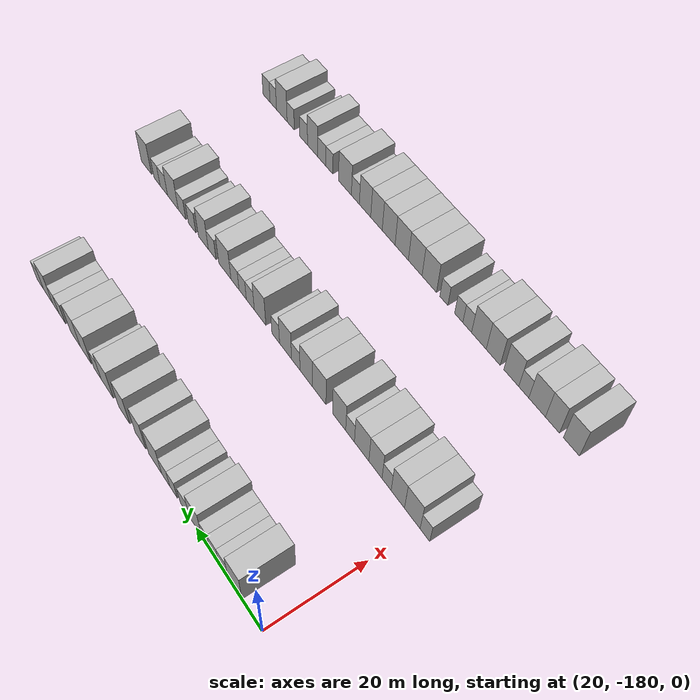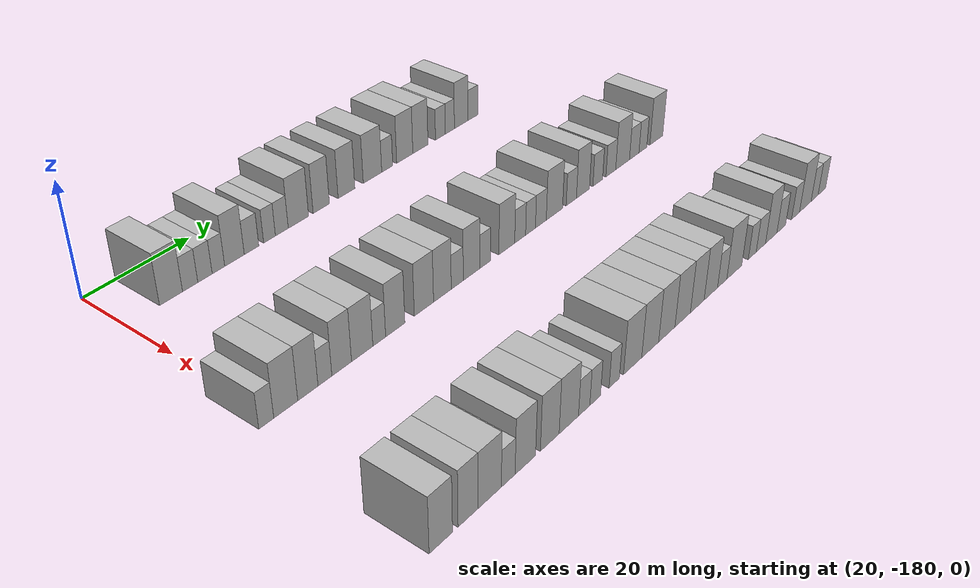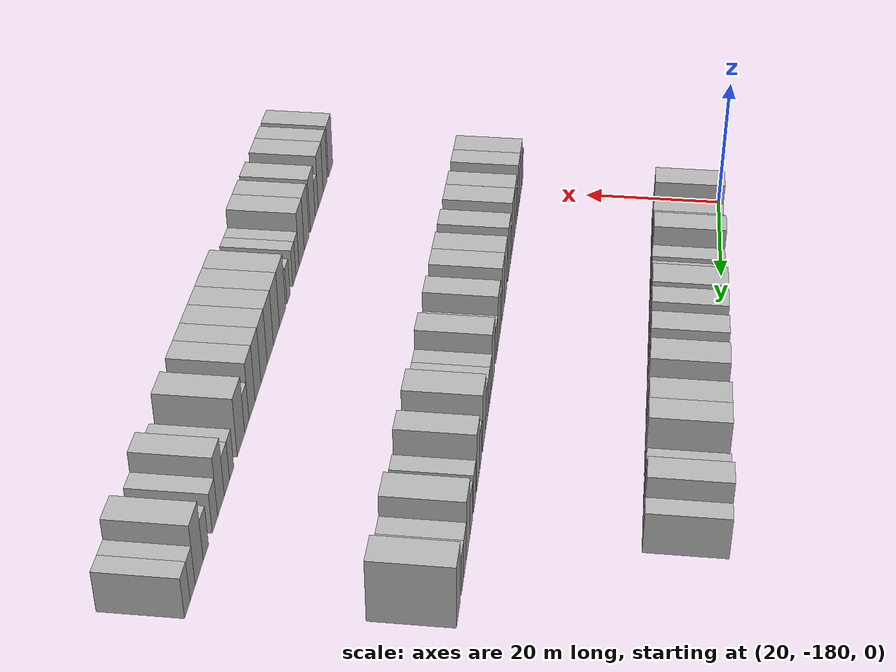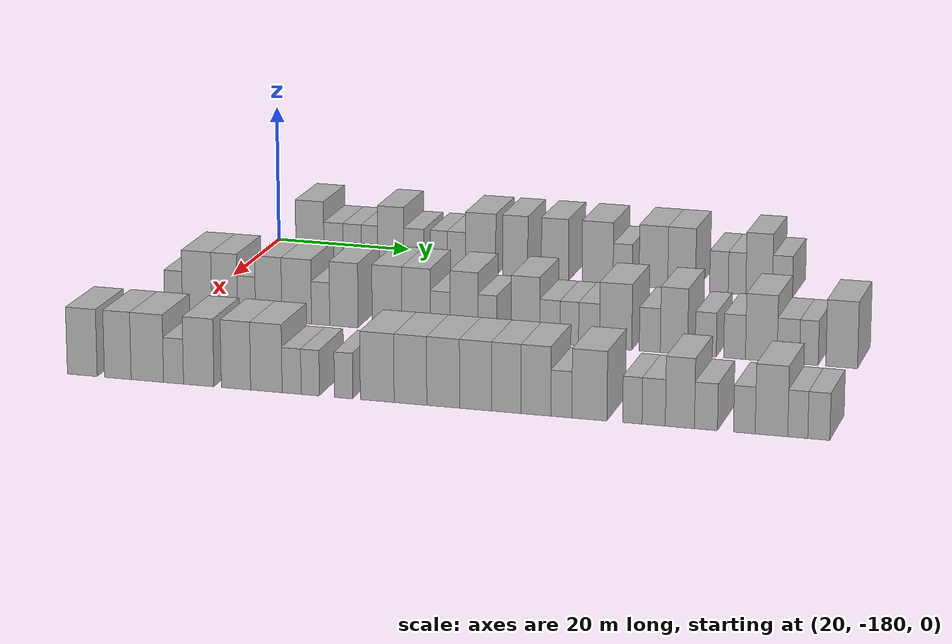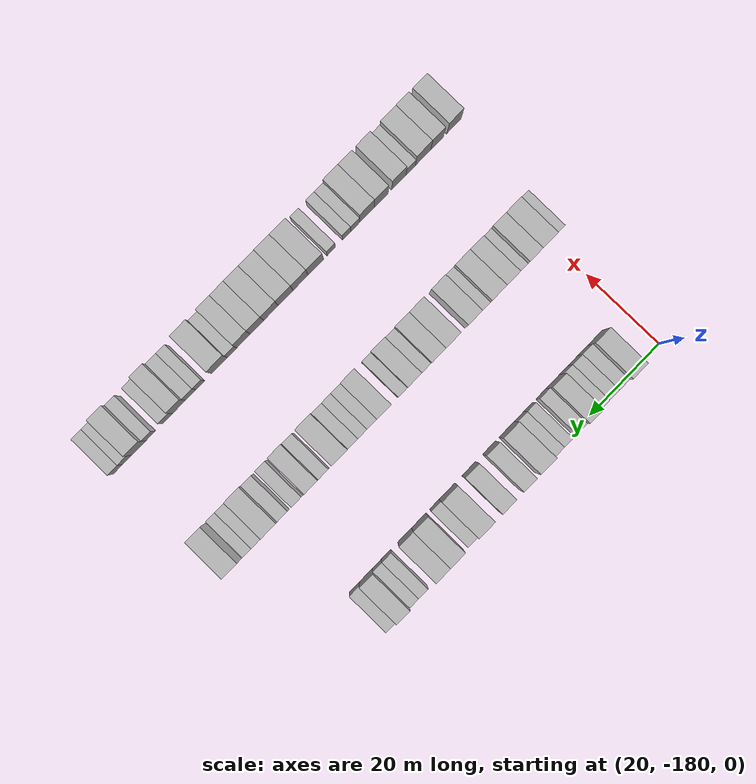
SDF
<sdf version="1.6">
 <world name="default">
  <model name="building_23">
   <static>1</static>
   <pose>25.0000 -171.9300 0 0.000000 0.000000 0.000000</pose>
   <link name="link">
    <pose>0 0 4.50 0 0 0</pose>
    <collision name="collision"><geometry><box><size>10.0000 4.2442 9.0000</size></box></geometry></collision>
    <visual name="visual">
     <cast_shadows>0</cast_shadows>
     <geometry><box><size>10.0000 4.2442 9.0000</size></box></geometry>
     <material>
      <script>
       <uri>model://HANNAS_wall/materials/scripts</uri>
       <uri>model://HANNAS_wall/materials/textures</uri>
       <name>vrc/HANNAS_wall</name>
      </script>
     </material>
    </visual>
   </link>
  </model>
  <model name="building_24">
   <static>1</static>
   <pose>25.0000 -168.3717 0 0.000000 0.000000 0.000000</pose>
   <link name="link">
    <pose>0 0 3.00 0 0 0</pose>
    <collision name="collision"><geometry><box><size>10.0000 2.8724 6.0000</size></box></geometry></collision>
    <visual name="visual">
     <cast_shadows>0</cast_shadows>
     <geometry><box><size>10.0000 2.8724 6.0000</size></box></geometry>
     <material>
      <script>
       <uri>model://HANNAS_wall/materials/scripts</uri>
       <uri>model://HANNAS_wall/materials/textures</uri>
       <name>vrc/HANNAS_wall</name>
      </script>
     </material>
    </visual>
   </link>
  </model>
  <model name="building_25">
   <static>1</static>
   <pose>25.0000 -165.5515 0 0.000000 0.000000 0.000000</pose>
   <link name="link">
    <pose>0 0 3.00 0 0 0</pose>
    <collision name="collision"><geometry><box><size>10.0000 2.7679 6.0000</size></box></geometry></collision>
    <visual name="visual">
     <cast_shadows>0</cast_shadows>
     <geometry><box><size>10.0000 2.7679 6.0000</size></box></geometry>
     <material>
      <script>
       <uri>model://HANNAS_wall/materials/scripts</uri>
       <uri>model://HANNAS_wall/materials/textures</uri>
       <name>vrc/HANNAS_wall</name>
      </script>
     </material>
    </visual>
   </link>
  </model>
  <model name="building_26">
   <static>1</static>
   <pose>25.0000 -162.9412 0 0.000000 0.000000 0.000000</pose>
   <link name="link">
    <pose>0 0 3.00 0 0 0</pose>
    <collision name="collision"><geometry><box><size>10.0000 2.4527 6.0000</size></box></geometry></collision>
    <visual name="visual">
     <cast_shadows>0</cast_shadows>
     <geometry><box><size>10.0000 2.4527 6.0000</size></box></geometry>
     <material>
      <script>
       <uri>model://HANNAS_wall/materials/scripts</uri>
       <uri>model://HANNAS_wall/materials/textures</uri>
       <name>vrc/HANNAS_wall</name>
      </script>
     </material>
    </visual>
   </link>
  </model>
  <model name="building_27">
   <static>1</static>
   <pose>25.0000 -159.7612 0 0.000000 0.000000 0.000000</pose>
   <link name="link">
    <pose>0 0 4.50 0 0 0</pose>
    <collision name="collision"><geometry><box><size>10.0000 3.9074 9.0000</size></box></geometry></collision>
    <visual name="visual">
     <cast_shadows>0</cast_shadows>
     <geometry><box><size>10.0000 3.9074 9.0000</size></box></geometry>
     <material>
      <script>
       <uri>model://HANNAS_wall/materials/scripts</uri>
       <uri>model://HANNAS_wall/materials/textures</uri>
       <name>vrc/HANNAS_wall</name>
      </script>
     </material>
    </visual>
   </link>
  </model>
  <model name="building_28">
   <static>1</static>
   <pose>25.0000 -156.3149 0 0.000000 0.000000 0.000000</pose>
   <link name="link">
    <pose>0 0 3.00 0 0 0</pose>
    <collision name="collision"><geometry><box><size>10.0000 2.9851 6.0000</size></box></geometry></collision>
    <visual name="visual">
     <cast_shadows>0</cast_shadows>
     <geometry><box><size>10.0000 2.9851 6.0000</size></box></geometry>
     <material>
      <script>
       <uri>model://HANNAS_wall/materials/scripts</uri>
       <uri>model://HANNAS_wall/materials/textures</uri>
       <name>vrc/HANNAS_wall</name>
      </script>
     </material>
    </visual>
   </link>
  </model>
  <model name="building_29">
   <static>1</static>
   <pose>25.0000 -152.5858 0 0.000000 0.000000 0.000000</pose>
   <link name="link">
    <pose>0 0 3.00 0 0 0</pose>
    <collision name="collision"><geometry><box><size>10.0000 2.4733 6.0000</size></box></geometry></collision>
    <visual name="visual">
     <cast_shadows>0</cast_shadows>
     <geometry><box><size>10.0000 2.4733 6.0000</size></box></geometry>
     <material>
      <script>
       <uri>model://HANNAS_wall/materials/scripts</uri>
       <uri>model://HANNAS_wall/materials/textures</uri>
       <name>vrc/HANNAS_wall</name>
      </script>
     </material>
    </visual>
   </link>
  </model>
  <model name="building_30">
   <static>1</static>
   <pose>25.0000 -149.9819 0 0.000000 0.000000 0.000000</pose>
   <link name="link">
    <pose>0 0 3.00 0 0 0</pose>
    <collision name="collision"><geometry><box><size>10.0000 2.7344 6.0000</size></box></geometry></collision>
    <visual name="visual">
     <cast_shadows>0</cast_shadows>
     <geometry><box><size>10.0000 2.7344 6.0000</size></box></geometry>
     <material>
      <script>
       <uri>model://HANNAS_wall/materials/scripts</uri>
       <uri>model://HANNAS_wall/materials/textures</uri>
       <name>vrc/HANNAS_wall</name>
      </script>
     </material>
    </visual>
   </link>
  </model>
  <model name="building_31">
   <static>1</static>
   <pose>25.0000 -146.3882 0 0.000000 0.000000 0.000000</pose>
   <link name="link">
    <pose>0 0 4.50 0 0 0</pose>
    <collision name="collision"><geometry><box><size>10.0000 4.4530 9.0000</size></box></geometry></collision>
    <visual name="visual">
     <cast_shadows>0</cast_shadows>
     <geometry><box><size>10.0000 4.4530 9.0000</size></box></geometry>
     <material>
      <script>
       <uri>model://HANNAS_wall/materials/scripts</uri>
       <uri>model://HANNAS_wall/materials/textures</uri>
       <name>vrc/HANNAS_wall</name>
      </script>
     </material>
    </visual>
   </link>
  </model>
  <model name="building_32">
   <static>1</static>
   <pose>25.0000 -141.3187 0 0.000000 0.000000 0.000000</pose>
   <link name="link">
    <pose>0 0 4.50 0 0 0</pose>
    <collision name="collision"><geometry><box><size>10.0000 3.6860 9.0000</size></box></geometry></collision>
    <visual name="visual">
     <cast_shadows>0</cast_shadows>
     <geometry><box><size>10.0000 3.6860 9.0000</size></box></geometry>
     <material>
      <script>
       <uri>model://HANNAS_wall/materials/scripts</uri>
       <uri>model://HANNAS_wall/materials/textures</uri>
       <name>vrc/HANNAS_wall</name>
      </script>
     </material>
    </visual>
   </link>
  </model>
  <model name="building_33">
   <static>1</static>
   <pose>25.0000 -135.5081 0 0.000000 0.000000 0.000000</pose>
   <link name="link">
    <pose>0 0 4.50 0 0 0</pose>
    <collision name="collision"><geometry><box><size>10.0000 3.9353 9.0000</size></box></geometry></collision>
    <visual name="visual">
     <cast_shadows>0</cast_shadows>
     <geometry><box><size>10.0000 3.9353 9.0000</size></box></geometry>
     <material>
      <script>
       <uri>model://HANNAS_wall/materials/scripts</uri>
       <uri>model://HANNAS_wall/materials/textures</uri>
       <name>vrc/HANNAS_wall</name>
      </script>
     </material>
    </visual>
   </link>
  </model>
  <model name="building_34">
   <static>1</static>
   <pose>25.0000 -129.2922 0 0.000000 0.000000 0.000000</pose>
   <link name="link">
    <pose>0 0 4.50 0 0 0</pose>
    <collision name="collision"><geometry><box><size>10.0000 4.4963 9.0000</size></box></geometry></collision>
    <visual name="visual">
     <cast_shadows>0</cast_shadows>
     <geometry><box><size>10.0000 4.4963 9.0000</size></box></geometry>
     <material>
      <script>
       <uri>model://HANNAS_wall/materials/scripts</uri>
       <uri>model://HANNAS_wall/materials/textures</uri>
       <name>vrc/HANNAS_wall</name>
      </script>
     </material>
    </visual>
   </link>
  </model>
  <model name="building_35">
   <static>1</static>
   <pose>25.0000 -125.6714 0 0.000000 0.000000 0.000000</pose>
   <link name="link">
    <pose>0 0 3.00 0 0 0</pose>
    <collision name="collision"><geometry><box><size>10.0000 2.7454 6.0000</size></box></geometry></collision>
    <visual name="visual">
     <cast_shadows>0</cast_shadows>
     <geometry><box><size>10.0000 2.7454 6.0000</size></box></geometry>
     <material>
      <script>
       <uri>model://HANNAS_wall/materials/scripts</uri>
       <uri>model://HANNAS_wall/materials/textures</uri>
       <name>vrc/HANNAS_wall</name>
      </script>
     </material>
    </visual>
   </link>
  </model>
  <model name="building_36">
   <static>1</static>
   <pose>25.0000 -121.2329 0 0.000000 0.000000 0.000000</pose>
   <link name="link">
    <pose>0 0 4.50 0 0 0</pose>
    <collision name="collision"><geometry><box><size>10.0000 4.1315 9.0000</size></box></geometry></collision>
    <visual name="visual">
     <cast_shadows>0</cast_shadows>
     <geometry><box><size>10.0000 4.1315 9.0000</size></box></geometry>
     <material>
      <script>
       <uri>model://HANNAS_wall/materials/scripts</uri>
       <uri>model://HANNAS_wall/materials/textures</uri>
       <name>vrc/HANNAS_wall</name>
      </script>
     </material>
    </visual>
   </link>
  </model>
  <model name="building_37">
   <static>1</static>
   <pose>25.0000 -117.1800 0 0.000000 0.000000 0.000000</pose>
   <link name="link">
    <pose>0 0 4.50 0 0 0</pose>
    <collision name="collision"><geometry><box><size>10.0000 3.9742 9.0000</size></box></geometry></collision>
    <visual name="visual">
     <cast_shadows>0</cast_shadows>
     <geometry><box><size>10.0000 3.9742 9.0000</size></box></geometry>
     <material>
      <script>
       <uri>model://HANNAS_wall/materials/scripts</uri>
       <uri>model://HANNAS_wall/materials/textures</uri>
       <name>vrc/HANNAS_wall</name>
      </script>
     </material>
    </visual>
   </link>
  </model>
  <model name="building_38">
   <static>1</static>
   <pose>25.0000 -111.8681 0 0.000000 0.000000 0.000000</pose>
   <link name="link">
    <pose>0 0 3.00 0 0 0</pose>
    <collision name="collision"><geometry><box><size>10.0000 2.6496 6.0000</size></box></geometry></collision>
    <visual name="visual">
     <cast_shadows>0</cast_shadows>
     <geometry><box><size>10.0000 2.6496 6.0000</size></box></geometry>
     <material>
      <script>
       <uri>model://HANNAS_wall/materials/scripts</uri>
       <uri>model://HANNAS_wall/materials/textures</uri>
       <name>vrc/HANNAS_wall</name>
      </script>
     </material>
    </visual>
   </link>
  </model>
  <model name="building_39">
   <static>1</static>
   <pose>25.0000 -109.2914 0 0.000000 0.000000 0.000000</pose>
   <link name="link">
    <pose>0 0 3.00 0 0 0</pose>
    <collision name="collision"><geometry><box><size>10.0000 2.5039 6.0000</size></box></geometry></collision>
    <visual name="visual">
     <cast_shadows>0</cast_shadows>
     <geometry><box><size>10.0000 2.5039 6.0000</size></box></geometry>
     <material>
      <script>
       <uri>model://HANNAS_wall/materials/scripts</uri>
       <uri>model://HANNAS_wall/materials/textures</uri>
       <name>vrc/HANNAS_wall</name>
      </script>
     </material>
    </visual>
   </link>
  </model>
  <model name="building_40">
   <static>1</static>
   <pose>25.0000 -106.1628 0 0.000000 0.000000 0.000000</pose>
   <link name="link">
    <pose>0 0 4.50 0 0 0</pose>
    <collision name="collision"><geometry><box><size>10.0000 3.7533 9.0000</size></box></geometry></collision>
    <visual name="visual">
     <cast_shadows>0</cast_shadows>
     <geometry><box><size>10.0000 3.7533 9.0000</size></box></geometry>
     <material>
      <script>
       <uri>model://HANNAS_wall/materials/scripts</uri>
       <uri>model://HANNAS_wall/materials/textures</uri>
       <name>vrc/HANNAS_wall</name>
      </script>
     </material>
    </visual>
   </link>
  </model>
  <model name="building_41">
   <static>1</static>
   <pose>25.0000 -102.8780 0 0.000000 0.000000 0.000000</pose>
   <link name="link">
    <pose>0 0 3.00 0 0 0</pose>
    <collision name="collision"><geometry><box><size>10.0000 2.8161 6.0000</size></box></geometry></collision>
    <visual name="visual">
     <cast_shadows>0</cast_shadows>
     <geometry><box><size>10.0000 2.8161 6.0000</size></box></geometry>
     <material>
      <script>
       <uri>model://HANNAS_wall/materials/scripts</uri>
       <uri>model://HANNAS_wall/materials/textures</uri>
       <name>vrc/HANNAS_wall</name>
      </script>
     </material>
    </visual>
   </link>
  </model>
  <model name="building_162">
   <static>1</static>
   <pose>55.0000 -181.6245 0 0.000000 0.000000 0.000000</pose>
   <link name="link">
    <pose>0 0 3.00 0 0 0</pose>
    <collision name="collision"><geometry><box><size>10.0000 2.5872 6.0000</size></box></geometry></collision>
    <visual name="visual">
     <cast_shadows>0</cast_shadows>
     <geometry><box><size>10.0000 2.5872 6.0000</size></box></geometry>
     <material>
      <script>
       <uri>model://HANNAS_wall/materials/scripts</uri>
       <uri>model://HANNAS_wall/materials/textures</uri>
       <name>vrc/HANNAS_wall</name>
      </script>
     </material>
    </visual>
   </link>
  </model>
  <model name="building_163">
   <static>1</static>
   <pose>55.0000 -178.2044 0 0.000000 0.000000 0.000000</pose>
   <link name="link">
    <pose>0 0 4.50 0 0 0</pose>
    <collision name="collision"><geometry><box><size>10.0000 4.2529 9.0000</size></box></geometry></collision>
    <visual name="visual">
     <cast_shadows>0</cast_shadows>
     <geometry><box><size>10.0000 4.2529 9.0000</size></box></geometry>
     <material>
      <script>
       <uri>model://HANNAS_wall/materials/scripts</uri>
       <uri>model://HANNAS_wall/materials/textures</uri>
       <name>vrc/HANNAS_wall</name>
      </script>
     </material>
    </visual>
   </link>
  </model>
  <model name="building_164">
   <static>1</static>
   <pose>55.0000 -174.2265 0 0.000000 0.000000 0.000000</pose>
   <link name="link">
    <pose>0 0 4.50 0 0 0</pose>
    <collision name="collision"><geometry><box><size>10.0000 3.7028 9.0000</size></box></geometry></collision>
    <visual name="visual">
     <cast_shadows>0</cast_shadows>
     <geometry><box><size>10.0000 3.7028 9.0000</size></box></geometry>
     <material>
      <script>
       <uri>model://HANNAS_wall/materials/scripts</uri>
       <uri>model://HANNAS_wall/materials/textures</uri>
       <name>vrc/HANNAS_wall</name>
      </script>
     </material>
    </visual>
   </link>
  </model>
  <model name="building_165">
   <static>1</static>
   <pose>55.0000 -171.0785 0 0.000000 0.000000 0.000000</pose>
   <link name="link">
    <pose>0 0 3.00 0 0 0</pose>
    <collision name="collision"><geometry><box><size>10.0000 2.5932 6.0000</size></box></geometry></collision>
    <visual name="visual">
     <cast_shadows>0</cast_shadows>
     <geometry><box><size>10.0000 2.5932 6.0000</size></box></geometry>
     <material>
      <script>
       <uri>model://HANNAS_wall/materials/scripts</uri>
       <uri>model://HANNAS_wall/materials/textures</uri>
       <name>vrc/HANNAS_wall</name>
      </script>
     </material>
    </visual>
   </link>
  </model>
  <model name="building_166">
   <static>1</static>
   <pose>55.0000 -167.8949 0 0.000000 0.000000 0.000000</pose>
   <link name="link">
    <pose>0 0 4.50 0 0 0</pose>
    <collision name="collision"><geometry><box><size>10.0000 3.7741 9.0000</size></box></geometry></collision>
    <visual name="visual">
     <cast_shadows>0</cast_shadows>
     <geometry><box><size>10.0000 3.7741 9.0000</size></box></geometry>
     <material>
      <script>
       <uri>model://HANNAS_wall/materials/scripts</uri>
       <uri>model://HANNAS_wall/materials/textures</uri>
       <name>vrc/HANNAS_wall</name>
      </script>
     </material>
    </visual>
   </link>
  </model>
  <model name="building_167">
   <static>1</static>
   <pose>55.0000 -163.8907 0 0.000000 0.000000 0.000000</pose>
   <link name="link">
    <pose>0 0 4.50 0 0 0</pose>
    <collision name="collision"><geometry><box><size>10.0000 4.2342 9.0000</size></box></geometry></collision>
    <visual name="visual">
     <cast_shadows>0</cast_shadows>
     <geometry><box><size>10.0000 4.2342 9.0000</size></box></geometry>
     <material>
      <script>
       <uri>model://HANNAS_wall/materials/scripts</uri>
       <uri>model://HANNAS_wall/materials/textures</uri>
       <name>vrc/HANNAS_wall</name>
      </script>
     </material>
    </visual>
   </link>
  </model>
  <model name="building_168">
   <static>1</static>
   <pose>55.0000 -160.4754 0 0.000000 0.000000 0.000000</pose>
   <link name="link">
    <pose>0 0 3.00 0 0 0</pose>
    <collision name="collision"><geometry><box><size>10.0000 2.5965 6.0000</size></box></geometry></collision>
    <visual name="visual">
     <cast_shadows>0</cast_shadows>
     <geometry><box><size>10.0000 2.5965 6.0000</size></box></geometry>
     <material>
      <script>
       <uri>model://HANNAS_wall/materials/scripts</uri>
       <uri>model://HANNAS_wall/materials/textures</uri>
       <name>vrc/HANNAS_wall</name>
      </script>
     </material>
    </visual>
   </link>
  </model>
  <model name="building_169">
   <static>1</static>
   <pose>55.0000 -157.1745 0 0.000000 0.000000 0.000000</pose>
   <link name="link">
    <pose>0 0 4.50 0 0 0</pose>
    <collision name="collision"><geometry><box><size>10.0000 4.0052 9.0000</size></box></geometry></collision>
    <visual name="visual">
     <cast_shadows>0</cast_shadows>
     <geometry><box><size>10.0000 4.0052 9.0000</size></box></geometry>
     <material>
      <script>
       <uri>model://HANNAS_wall/materials/scripts</uri>
       <uri>model://HANNAS_wall/materials/textures</uri>
       <name>vrc/HANNAS_wall</name>
      </script>
     </material>
    </visual>
   </link>
  </model>
  <model name="building_170">
   <static>1</static>
   <pose>55.0000 -151.0788 0 0.000000 0.000000 0.000000</pose>
   <link name="link">
    <pose>0 0 4.50 0 0 0</pose>
    <collision name="collision"><geometry><box><size>10.0000 4.1864 9.0000</size></box></geometry></collision>
    <visual name="visual">
     <cast_shadows>0</cast_shadows>
     <geometry><box><size>10.0000 4.1864 9.0000</size></box></geometry>
     <material>
      <script>
       <uri>model://HANNAS_wall/materials/scripts</uri>
       <uri>model://HANNAS_wall/materials/textures</uri>
       <name>vrc/HANNAS_wall</name>
      </script>
     </material>
    </visual>
   </link>
  </model>
  <model name="building_171">
   <static>1</static>
   <pose>55.0000 -147.0036 0 0.000000 0.000000 0.000000</pose>
   <link name="link">
    <pose>0 0 4.50 0 0 0</pose>
    <collision name="collision"><geometry><box><size>10.0000 3.9638 9.0000</size></box></geometry></collision>
    <visual name="visual">
     <cast_shadows>0</cast_shadows>
     <geometry><box><size>10.0000 3.9638 9.0000</size></box></geometry>
     <material>
      <script>
       <uri>model://HANNAS_wall/materials/scripts</uri>
       <uri>model://HANNAS_wall/materials/textures</uri>
       <name>vrc/HANNAS_wall</name>
      </script>
     </material>
    </visual>
   </link>
  </model>
  <model name="building_172">
   <static>1</static>
   <pose>55.0000 -143.6418 0 0.000000 0.000000 0.000000</pose>
   <link name="link">
    <pose>0 0 3.00 0 0 0</pose>
    <collision name="collision"><geometry><box><size>10.0000 2.7599 6.0000</size></box></geometry></collision>
    <visual name="visual">
     <cast_shadows>0</cast_shadows>
     <geometry><box><size>10.0000 2.7599 6.0000</size></box></geometry>
     <material>
      <script>
       <uri>model://HANNAS_wall/materials/scripts</uri>
       <uri>model://HANNAS_wall/materials/textures</uri>
       <name>vrc/HANNAS_wall</name>
      </script>
     </material>
    </visual>
   </link>
  </model>
  <model name="building_173">
   <static>1</static>
   <pose>55.0000 -140.3080 0 0.000000 0.000000 0.000000</pose>
   <link name="link">
    <pose>0 0 4.50 0 0 0</pose>
    <collision name="collision"><geometry><box><size>10.0000 3.9076 9.0000</size></box></geometry></collision>
    <visual name="visual">
     <cast_shadows>0</cast_shadows>
     <geometry><box><size>10.0000 3.9076 9.0000</size></box></geometry>
     <material>
      <script>
       <uri>model://HANNAS_wall/materials/scripts</uri>
       <uri>model://HANNAS_wall/materials/textures</uri>
       <name>vrc/HANNAS_wall</name>
      </script>
     </material>
    </visual>
   </link>
  </model>
  <model name="building_174">
   <static>1</static>
   <pose>55.0000 -137.0654 0 0.000000 0.000000 0.000000</pose>
   <link name="link">
    <pose>0 0 3.00 0 0 0</pose>
    <collision name="collision"><geometry><box><size>10.0000 2.5777 6.0000</size></box></geometry></collision>
    <visual name="visual">
     <cast_shadows>0</cast_shadows>
     <geometry><box><size>10.0000 2.5777 6.0000</size></box></geometry>
     <material>
      <script>
       <uri>model://HANNAS_wall/materials/scripts</uri>
       <uri>model://HANNAS_wall/materials/textures</uri>
       <name>vrc/HANNAS_wall</name>
      </script>
     </material>
    </visual>
   </link>
  </model>
  <model name="building_175">
   <static>1</static>
   <pose>55.0000 -131.8010 0 0.000000 0.000000 0.000000</pose>
   <link name="link">
    <pose>0 0 4.50 0 0 0</pose>
    <collision name="collision"><geometry><box><size>10.0000 3.9510 9.0000</size></box></geometry></collision>
    <visual name="visual">
     <cast_shadows>0</cast_shadows>
     <geometry><box><size>10.0000 3.9510 9.0000</size></box></geometry>
     <material>
      <script>
       <uri>model://HANNAS_wall/materials/scripts</uri>
       <uri>model://HANNAS_wall/materials/textures</uri>
       <name>vrc/HANNAS_wall</name>
      </script>
     </material>
    </visual>
   </link>
  </model>
  <model name="building_176">
   <static>1</static>
   <pose>55.0000 -128.4412 0 0.000000 0.000000 0.000000</pose>
   <link name="link">
    <pose>0 0 3.00 0 0 0</pose>
    <collision name="collision"><geometry><box><size>10.0000 2.7685 6.0000</size></box></geometry></collision>
    <visual name="visual">
     <cast_shadows>0</cast_shadows>
     <geometry><box><size>10.0000 2.7685 6.0000</size></box></geometry>
     <material>
      <script>
       <uri>model://HANNAS_wall/materials/scripts</uri>
       <uri>model://HANNAS_wall/materials/textures</uri>
       <name>vrc/HANNAS_wall</name>
      </script>
     </material>
    </visual>
   </link>
  </model>
  <model name="building_177">
   <static>1</static>
   <pose>55.0000 -125.7796 0 0.000000 0.000000 0.000000</pose>
   <link name="link">
    <pose>0 0 3.00 0 0 0</pose>
    <collision name="collision"><geometry><box><size>10.0000 2.5548 6.0000</size></box></geometry></collision>
    <visual name="visual">
     <cast_shadows>0</cast_shadows>
     <geometry><box><size>10.0000 2.5548 6.0000</size></box></geometry>
     <material>
      <script>
       <uri>model://HANNAS_wall/materials/scripts</uri>
       <uri>model://HANNAS_wall/materials/textures</uri>
       <name>vrc/HANNAS_wall</name>
      </script>
     </material>
    </visual>
   </link>
  </model>
  <model name="building_178">
   <static>1</static>
   <pose>55.0000 -123.0760 0 0.000000 0.000000 0.000000</pose>
   <link name="link">
    <pose>0 0 3.00 0 0 0</pose>
    <collision name="collision"><geometry><box><size>10.0000 2.8525 6.0000</size></box></geometry></collision>
    <visual name="visual">
     <cast_shadows>0</cast_shadows>
     <geometry><box><size>10.0000 2.8525 6.0000</size></box></geometry>
     <material>
      <script>
       <uri>model://HANNAS_wall/materials/scripts</uri>
       <uri>model://HANNAS_wall/materials/textures</uri>
       <name>vrc/HANNAS_wall</name>
      </script>
     </material>
    </visual>
   </link>
  </model>
  <model name="building_179">
   <static>1</static>
   <pose>55.0000 -119.4531 0 0.000000 0.000000 0.000000</pose>
   <link name="link">
    <pose>0 0 4.50 0 0 0</pose>
    <collision name="collision"><geometry><box><size>10.0000 4.3934 9.0000</size></box></geometry></collision>
    <visual name="visual">
     <cast_shadows>0</cast_shadows>
     <geometry><box><size>10.0000 4.3934 9.0000</size></box></geometry>
     <material>
      <script>
       <uri>model://HANNAS_wall/materials/scripts</uri>
       <uri>model://HANNAS_wall/materials/textures</uri>
       <name>vrc/HANNAS_wall</name>
      </script>
     </material>
    </visual>
   </link>
  </model>
  <model name="building_180">
   <static>1</static>
   <pose>55.0000 -114.8332 0 0.000000 0.000000 0.000000</pose>
   <link name="link">
    <pose>0 0 3.00 0 0 0</pose>
    <collision name="collision"><geometry><box><size>10.0000 2.8463 6.0000</size></box></geometry></collision>
    <visual name="visual">
     <cast_shadows>0</cast_shadows>
     <geometry><box><size>10.0000 2.8463 6.0000</size></box></geometry>
     <material>
      <script>
       <uri>model://HANNAS_wall/materials/scripts</uri>
       <uri>model://HANNAS_wall/materials/textures</uri>
       <name>vrc/HANNAS_wall</name>
      </script>
     </material>
    </visual>
   </link>
  </model>
  <model name="building_181">
   <static>1</static>
   <pose>55.0000 -111.5644 0 0.000000 0.000000 0.000000</pose>
   <link name="link">
    <pose>0 0 4.50 0 0 0</pose>
    <collision name="collision"><geometry><box><size>10.0000 3.6915 9.0000</size></box></geometry></collision>
    <visual name="visual">
     <cast_shadows>0</cast_shadows>
     <geometry><box><size>10.0000 3.6915 9.0000</size></box></geometry>
     <material>
      <script>
       <uri>model://HANNAS_wall/materials/scripts</uri>
       <uri>model://HANNAS_wall/materials/textures</uri>
       <name>vrc/HANNAS_wall</name>
      </script>
     </material>
    </visual>
   </link>
  </model>
  <model name="building_182">
   <static>1</static>
   <pose>55.0000 -107.3086 0 0.000000 0.000000 0.000000</pose>
   <link name="link">
    <pose>0 0 3.00 0 0 0</pose>
    <collision name="collision"><geometry><box><size>10.0000 2.8200 6.0000</size></box></geometry></collision>
    <visual name="visual">
     <cast_shadows>0</cast_shadows>
     <geometry><box><size>10.0000 2.8200 6.0000</size></box></geometry>
     <material>
      <script>
       <uri>model://HANNAS_wall/materials/scripts</uri>
       <uri>model://HANNAS_wall/materials/textures</uri>
       <name>vrc/HANNAS_wall</name>
      </script>
     </material>
    </visual>
   </link>
  </model>
  <model name="building_183">
   <static>1</static>
   <pose>55.0000 -103.4430 0 0.000000 0.000000 0.000000</pose>
   <link name="link">
    <pose>0 0 3.00 0 0 0</pose>
    <collision name="collision"><geometry><box><size>10.0000 2.9113 6.0000</size></box></geometry></collision>
    <visual name="visual">
     <cast_shadows>0</cast_shadows>
     <geometry><box><size>10.0000 2.9113 6.0000</size></box></geometry>
     <material>
      <script>
       <uri>model://HANNAS_wall/materials/scripts</uri>
       <uri>model://HANNAS_wall/materials/textures</uri>
       <name>vrc/HANNAS_wall</name>
      </script>
     </material>
    </visual>
   </link>
  </model>
  <model name="building_184">
   <static>1</static>
   <pose>55.0000 -99.8849 0 0.000000 0.000000 0.000000</pose>
   <link name="link">
    <pose>0 0 4.50 0 0 0</pose>
    <collision name="collision"><geometry><box><size>10.0000 4.2048 9.0000</size></box></geometry></collision>
    <visual name="visual">
     <cast_shadows>0</cast_shadows>
     <geometry><box><size>10.0000 4.2048 9.0000</size></box></geometry>
     <material>
      <script>
       <uri>model://HANNAS_wall/materials/scripts</uri>
       <uri>model://HANNAS_wall/materials/textures</uri>
       <name>vrc/HANNAS_wall</name>
      </script>
     </material>
    </visual>
   </link>
  </model>
  <model name="building_185">
   <static>1</static>
   <pose>55.0000 -96.3005 0 0.000000 0.000000 0.000000</pose>
   <link name="link">
    <pose>0 0 3.00 0 0 0</pose>
    <collision name="collision"><geometry><box><size>10.0000 2.9641 6.0000</size></box></geometry></collision>
    <visual name="visual">
     <cast_shadows>0</cast_shadows>
     <geometry><box><size>10.0000 2.9641 6.0000</size></box></geometry>
     <material>
      <script>
       <uri>model://HANNAS_wall/materials/scripts</uri>
       <uri>model://HANNAS_wall/materials/textures</uri>
       <name>vrc/HANNAS_wall</name>
      </script>
     </material>
    </visual>
   </link>
  </model>
  <model name="building_186">
   <static>1</static>
   <pose>55.0000 -93.5829 0 0.000000 0.000000 0.000000</pose>
   <link name="link">
    <pose>0 0 3.00 0 0 0</pose>
    <collision name="collision"><geometry><box><size>10.0000 2.4711 6.0000</size></box></geometry></collision>
    <visual name="visual">
     <cast_shadows>0</cast_shadows>
     <geometry><box><size>10.0000 2.4711 6.0000</size></box></geometry>
     <material>
      <script>
       <uri>model://HANNAS_wall/materials/scripts</uri>
       <uri>model://HANNAS_wall/materials/textures</uri>
       <name>vrc/HANNAS_wall</name>
      </script>
     </material>
    </visual>
   </link>
  </model>
  <model name="building_187">
   <static>1</static>
   <pose>55.0000 -89.2643 0 0.000000 0.000000 0.000000</pose>
   <link name="link">
    <pose>0 0 4.50 0 0 0</pose>
    <collision name="collision"><geometry><box><size>10.0000 4.1662 9.0000</size></box></geometry></collision>
    <visual name="visual">
     <cast_shadows>0</cast_shadows>
     <geometry><box><size>10.0000 4.1662 9.0000</size></box></geometry>
     <material>
      <script>
       <uri>model://HANNAS_wall/materials/scripts</uri>
       <uri>model://HANNAS_wall/materials/textures</uri>
       <name>vrc/HANNAS_wall</name>
      </script>
     </material>
    </visual>
   </link>
  </model>
  <model name="building_311">
   <static>1</static>
   <pose>85.0000 -182.9734 0 0.000000 0.000000 0.000000</pose>
   <link name="link">
    <pose>0 0 4.50 0 0 0</pose>
    <collision name="collision"><geometry><box><size>10.0000 4.1194 9.0000</size></box></geometry></collision>
    <visual name="visual">
     <cast_shadows>0</cast_shadows>
     <geometry><box><size>10.0000 4.1194 9.0000</size></box></geometry>
     <material>
      <script>
       <uri>model://HANNAS_wall/materials/scripts</uri>
       <uri>model://HANNAS_wall/materials/textures</uri>
       <name>vrc/HANNAS_wall</name>
      </script>
     </material>
    </visual>
   </link>
  </model>
  <model name="building_312">
   <static>1</static>
   <pose>85.0000 -178.0764 0 0.000000 0.000000 0.000000</pose>
   <link name="link">
    <pose>0 0 4.50 0 0 0</pose>
    <collision name="collision"><geometry><box><size>10.0000 3.6745 9.0000</size></box></geometry></collision>
    <visual name="visual">
     <cast_shadows>0</cast_shadows>
     <geometry><box><size>10.0000 3.6745 9.0000</size></box></geometry>
     <material>
      <script>
       <uri>model://HANNAS_wall/materials/scripts</uri>
       <uri>model://HANNAS_wall/materials/textures</uri>
       <name>vrc/HANNAS_wall</name>
      </script>
     </material>
    </visual>
   </link>
  </model>
  <model name="building_313">
   <static>1</static>
   <pose>85.0000 -174.0192 0 0.000000 0.000000 0.000000</pose>
   <link name="link">
    <pose>0 0 4.50 0 0 0</pose>
    <collision name="collision"><geometry><box><size>10.0000 4.4398 9.0000</size></box></geometry></collision>
    <visual name="visual">
     <cast_shadows>0</cast_shadows>
     <geometry><box><size>10.0000 4.4398 9.0000</size></box></geometry>
     <material>
      <script>
       <uri>model://HANNAS_wall/materials/scripts</uri>
       <uri>model://HANNAS_wall/materials/textures</uri>
       <name>vrc/HANNAS_wall</name>
      </script>
     </material>
    </visual>
   </link>
  </model>
  <model name="building_314">
   <static>1</static>
   <pose>85.0000 -170.4436 0 0.000000 0.000000 0.000000</pose>
   <link name="link">
    <pose>0 0 3.00 0 0 0</pose>
    <collision name="collision"><geometry><box><size>10.0000 2.7114 6.0000</size></box></geometry></collision>
    <visual name="visual">
     <cast_shadows>0</cast_shadows>
     <geometry><box><size>10.0000 2.7114 6.0000</size></box></geometry>
     <material>
      <script>
       <uri>model://HANNAS_wall/materials/scripts</uri>
       <uri>model://HANNAS_wall/materials/textures</uri>
       <name>vrc/HANNAS_wall</name>
      </script>
     </material>
    </visual>
   </link>
  </model>
  <model name="building_315">
   <static>1</static>
   <pose>85.0000 -167.0212 0 0.000000 0.000000 0.000000</pose>
   <link name="link">
    <pose>0 0 4.50 0 0 0</pose>
    <collision name="collision"><geometry><box><size>10.0000 4.1335 9.0000</size></box></geometry></collision>
    <visual name="visual">
     <cast_shadows>0</cast_shadows>
     <geometry><box><size>10.0000 4.1335 9.0000</size></box></geometry>
     <material>
      <script>
       <uri>model://HANNAS_wall/materials/scripts</uri>
       <uri>model://HANNAS_wall/materials/textures</uri>
       <name>vrc/HANNAS_wall</name>
      </script>
     </material>
    </visual>
   </link>
  </model>
  <model name="building_316">
   <static>1</static>
   <pose>85.0000 -161.9781 0 0.000000 0.000000 0.000000</pose>
   <link name="link">
    <pose>0 0 4.50 0 0 0</pose>
    <collision name="collision"><geometry><box><size>10.0000 3.9526 9.0000</size></box></geometry></collision>
    <visual name="visual">
     <cast_shadows>0</cast_shadows>
     <geometry><box><size>10.0000 3.9526 9.0000</size></box></geometry>
     <material>
      <script>
       <uri>model://HANNAS_wall/materials/scripts</uri>
       <uri>model://HANNAS_wall/materials/textures</uri>
       <name>vrc/HANNAS_wall</name>
      </script>
     </material>
    </visual>
   </link>
  </model>
  <model name="building_317">
   <static>1</static>
   <pose>85.0000 -157.8906 0 0.000000 0.000000 0.000000</pose>
   <link name="link">
    <pose>0 0 4.50 0 0 0</pose>
    <collision name="collision"><geometry><box><size>10.0000 4.2223 9.0000</size></box></geometry></collision>
    <visual name="visual">
     <cast_shadows>0</cast_shadows>
     <geometry><box><size>10.0000 4.2223 9.0000</size></box></geometry>
     <material>
      <script>
       <uri>model://HANNAS_wall/materials/scripts</uri>
       <uri>model://HANNAS_wall/materials/textures</uri>
       <name>vrc/HANNAS_wall</name>
      </script>
     </material>
    </visual>
   </link>
  </model>
  <model name="building_318">
   <static>1</static>
   <pose>85.0000 -154.5072 0 0.000000 0.000000 0.000000</pose>
   <link name="link">
    <pose>0 0 3.00 0 0 0</pose>
    <collision name="collision"><geometry><box><size>10.0000 2.5445 6.0000</size></box></geometry></collision>
    <visual name="visual">
     <cast_shadows>0</cast_shadows>
     <geometry><box><size>10.0000 2.5445 6.0000</size></box></geometry>
     <material>
      <script>
       <uri>model://HANNAS_wall/materials/scripts</uri>
       <uri>model://HANNAS_wall/materials/textures</uri>
       <name>vrc/HANNAS_wall</name>
      </script>
     </material>
    </visual>
   </link>
  </model>
  <model name="building_319">
   <static>1</static>
   <pose>85.0000 -152.0159 0 0.000000 0.000000 0.000000</pose>
   <link name="link">
    <pose>0 0 3.00 0 0 0</pose>
    <collision name="collision"><geometry><box><size>10.0000 2.4382 6.0000</size></box></geometry></collision>
    <visual name="visual">
     <cast_shadows>0</cast_shadows>
     <geometry><box><size>10.0000 2.4382 6.0000</size></box></geometry>
     <material>
      <script>
       <uri>model://HANNAS_wall/materials/scripts</uri>
       <uri>model://HANNAS_wall/materials/textures</uri>
       <name>vrc/HANNAS_wall</name>
      </script>
     </material>
    </visual>
   </link>
  </model>
  <model name="building_320">
   <static>1</static>
   <pose>85.0000 -147.5819 0 0.000000 0.000000 0.000000</pose>
   <link name="link">
    <pose>0 0 3.00 0 0 0</pose>
    <collision name="collision"><geometry><box><size>10.0000 2.4298 6.0000</size></box></geometry></collision>
    <visual name="visual">
     <cast_shadows>0</cast_shadows>
     <geometry><box><size>10.0000 2.4298 6.0000</size></box></geometry>
     <material>
      <script>
       <uri>model://HANNAS_wall/materials/scripts</uri>
       <uri>model://HANNAS_wall/materials/textures</uri>
       <name>vrc/HANNAS_wall</name>
      </script>
     </material>
    </visual>
   </link>
  </model>
  <model name="building_321">
   <static>1</static>
   <pose>85.0000 -143.1334 0 0.000000 0.000000 0.000000</pose>
   <link name="link">
    <pose>0 0 4.50 0 0 0</pose>
    <collision name="collision"><geometry><box><size>10.0000 4.4672 9.0000</size></box></geometry></collision>
    <visual name="visual">
     <cast_shadows>0</cast_shadows>
     <geometry><box><size>10.0000 4.4672 9.0000</size></box></geometry>
     <material>
      <script>
       <uri>model://HANNAS_wall/materials/scripts</uri>
       <uri>model://HANNAS_wall/materials/textures</uri>
       <name>vrc/HANNAS_wall</name>
      </script>
     </material>
    </visual>
   </link>
  </model>
  <model name="building_322">
   <static>1</static>
   <pose>85.0000 -138.7581 0 0.000000 0.000000 0.000000</pose>
   <link name="link">
    <pose>0 0 4.50 0 0 0</pose>
    <collision name="collision"><geometry><box><size>10.0000 4.2833 9.0000</size></box></geometry></collision>
    <visual name="visual">
     <cast_shadows>0</cast_shadows>
     <geometry><box><size>10.0000 4.2833 9.0000</size></box></geometry>
     <material>
      <script>
       <uri>model://HANNAS_wall/materials/scripts</uri>
       <uri>model://HANNAS_wall/materials/textures</uri>
       <name>vrc/HANNAS_wall</name>
      </script>
     </material>
    </visual>
   </link>
  </model>
  <model name="building_323">
   <static>1</static>
   <pose>85.0000 -134.4851 0 0.000000 0.000000 0.000000</pose>
   <link name="link">
    <pose>0 0 4.50 0 0 0</pose>
    <collision name="collision"><geometry><box><size>10.0000 4.2628 9.0000</size></box></geometry></collision>
    <visual name="visual">
     <cast_shadows>0</cast_shadows>
     <geometry><box><size>10.0000 4.2628 9.0000</size></box></geometry>
     <material>
      <script>
       <uri>model://HANNAS_wall/materials/scripts</uri>
       <uri>model://HANNAS_wall/materials/textures</uri>
       <name>vrc/HANNAS_wall</name>
      </script>
     </material>
    </visual>
   </link>
  </model>
  <model name="building_324">
   <static>1</static>
   <pose>85.0000 -130.2703 0 0.000000 0.000000 0.000000</pose>
   <link name="link">
    <pose>0 0 4.50 0 0 0</pose>
    <collision name="collision"><geometry><box><size>10.0000 4.1667 9.0000</size></box></geometry></collision>
    <visual name="visual">
     <cast_shadows>0</cast_shadows>
     <geometry><box><size>10.0000 4.1667 9.0000</size></box></geometry>
     <material>
      <script>
       <uri>model://HANNAS_wall/materials/scripts</uri>
       <uri>model://HANNAS_wall/materials/textures</uri>
       <name>vrc/HANNAS_wall</name>
      </script>
     </material>
    </visual>
   </link>
  </model>
  <model name="building_325">
   <static>1</static>
   <pose>85.0000 -126.2800 0 0.000000 0.000000 0.000000</pose>
   <link name="link">
    <pose>0 0 4.50 0 0 0</pose>
    <collision name="collision"><geometry><box><size>10.0000 3.8138 9.0000</size></box></geometry></collision>
    <visual name="visual">
     <cast_shadows>0</cast_shadows>
     <geometry><box><size>10.0000 3.8138 9.0000</size></box></geometry>
     <material>
      <script>
       <uri>model://HANNAS_wall/materials/scripts</uri>
       <uri>model://HANNAS_wall/materials/textures</uri>
       <name>vrc/HANNAS_wall</name>
      </script>
     </material>
    </visual>
   </link>
  </model>
  <model name="building_326">
   <static>1</static>
   <pose>85.0000 -122.4558 0 0.000000 0.000000 0.000000</pose>
   <link name="link">
    <pose>0 0 4.50 0 0 0</pose>
    <collision name="collision"><geometry><box><size>10.0000 3.8347 9.0000</size></box></geometry></collision>
    <visual name="visual">
     <cast_shadows>0</cast_shadows>
     <geometry><box><size>10.0000 3.8347 9.0000</size></box></geometry>
     <material>
      <script>
       <uri>model://HANNAS_wall/materials/scripts</uri>
       <uri>model://HANNAS_wall/materials/textures</uri>
       <name>vrc/HANNAS_wall</name>
      </script>
     </material>
    </visual>
   </link>
  </model>
  <model name="building_327">
   <static>1</static>
   <pose>85.0000 -119.1828 0 0.000000 0.000000 0.000000</pose>
   <link name="link">
    <pose>0 0 3.00 0 0 0</pose>
    <collision name="collision"><geometry><box><size>10.0000 2.7114 6.0000</size></box></geometry></collision>
    <visual name="visual">
     <cast_shadows>0</cast_shadows>
     <geometry><box><size>10.0000 2.7114 6.0000</size></box></geometry>
     <material>
      <script>
       <uri>model://HANNAS_wall/materials/scripts</uri>
       <uri>model://HANNAS_wall/materials/textures</uri>
       <name>vrc/HANNAS_wall</name>
      </script>
     </material>
    </visual>
   </link>
  </model>
  <model name="building_328">
   <static>1</static>
   <pose>85.0000 -115.5858 0 0.000000 0.000000 0.000000</pose>
   <link name="link">
    <pose>0 0 4.50 0 0 0</pose>
    <collision name="collision"><geometry><box><size>10.0000 4.4826 9.0000</size></box></geometry></collision>
    <visual name="visual">
     <cast_shadows>0</cast_shadows>
     <geometry><box><size>10.0000 4.4826 9.0000</size></box></geometry>
     <material>
      <script>
       <uri>model://HANNAS_wall/materials/scripts</uri>
       <uri>model://HANNAS_wall/materials/textures</uri>
       <name>vrc/HANNAS_wall</name>
      </script>
     </material>
    </visual>
   </link>
  </model>
  <model name="building_329">
   <static>1</static>
   <pose>85.0000 -110.1176 0 0.000000 0.000000 0.000000</pose>
   <link name="link">
    <pose>0 0 3.00 0 0 0</pose>
    <collision name="collision"><geometry><box><size>10.0000 2.4538 6.0000</size></box></geometry></collision>
    <visual name="visual">
     <cast_shadows>0</cast_shadows>
     <geometry><box><size>10.0000 2.4538 6.0000</size></box></geometry>
     <material>
      <script>
       <uri>model://HANNAS_wall/materials/scripts</uri>
       <uri>model://HANNAS_wall/materials/textures</uri>
       <name>vrc/HANNAS_wall</name>
      </script>
     </material>
    </visual>
   </link>
  </model>
  <model name="building_330">
   <static>1</static>
   <pose>85.0000 -107.4180 0 0.000000 0.000000 0.000000</pose>
   <link name="link">
    <pose>0 0 3.00 0 0 0</pose>
    <collision name="collision"><geometry><box><size>10.0000 2.9454 6.0000</size></box></geometry></collision>
    <visual name="visual">
     <cast_shadows>0</cast_shadows>
     <geometry><box><size>10.0000 2.9454 6.0000</size></box></geometry>
     <material>
      <script>
       <uri>model://HANNAS_wall/materials/scripts</uri>
       <uri>model://HANNAS_wall/materials/textures</uri>
       <name>vrc/HANNAS_wall</name>
      </script>
     </material>
    </visual>
   </link>
  </model>
  <model name="building_331">
   <static>1</static>
   <pose>85.0000 -104.1085 0 0.000000 0.000000 0.000000</pose>
   <link name="link">
    <pose>0 0 4.50 0 0 0</pose>
    <collision name="collision"><geometry><box><size>10.0000 3.6736 9.0000</size></box></geometry></collision>
    <visual name="visual">
     <cast_shadows>0</cast_shadows>
     <geometry><box><size>10.0000 3.6736 9.0000</size></box></geometry>
     <material>
      <script>
       <uri>model://HANNAS_wall/materials/scripts</uri>
       <uri>model://HANNAS_wall/materials/textures</uri>
       <name>vrc/HANNAS_wall</name>
      </script>
     </material>
    </visual>
   </link>
  </model>
  <model name="building_332">
   <static>1</static>
   <pose>85.0000 -100.8234 0 0.000000 0.000000 0.000000</pose>
   <link name="link">
    <pose>0 0 3.00 0 0 0</pose>
    <collision name="collision"><geometry><box><size>10.0000 2.8967 6.0000</size></box></geometry></collision>
    <visual name="visual">
     <cast_shadows>0</cast_shadows>
     <geometry><box><size>10.0000 2.8967 6.0000</size></box></geometry>
     <material>
      <script>
       <uri>model://HANNAS_wall/materials/scripts</uri>
       <uri>model://HANNAS_wall/materials/textures</uri>
       <name>vrc/HANNAS_wall</name>
      </script>
     </material>
    </visual>
   </link>
  </model>
  <model name="building_333">
   <static>1</static>
   <pose>85.0000 -96.0263 0 0.000000 0.000000 0.000000</pose>
   <link name="link">
    <pose>0 0 3.00 0 0 0</pose>
    <collision name="collision"><geometry><box><size>10.0000 2.6973 6.0000</size></box></geometry></collision>
    <visual name="visual">
     <cast_shadows>0</cast_shadows>
     <geometry><box><size>10.0000 2.6973 6.0000</size></box></geometry>
     <material>
      <script>
       <uri>model://HANNAS_wall/materials/scripts</uri>
       <uri>model://HANNAS_wall/materials/textures</uri>
       <name>vrc/HANNAS_wall</name>
      </script>
     </material>
    </visual>
   </link>
  </model>
  <model name="building_334">
   <static>1</static>
   <pose>85.0000 -92.6562 0 0.000000 0.000000 0.000000</pose>
   <link name="link">
    <pose>0 0 4.50 0 0 0</pose>
    <collision name="collision"><geometry><box><size>10.0000 4.0429 9.0000</size></box></geometry></collision>
    <visual name="visual">
     <cast_shadows>0</cast_shadows>
     <geometry><box><size>10.0000 4.0429 9.0000</size></box></geometry>
     <material>
      <script>
       <uri>model://HANNAS_wall/materials/scripts</uri>
       <uri>model://HANNAS_wall/materials/textures</uri>
       <name>vrc/HANNAS_wall</name>
      </script>
     </material>
    </visual>
   </link>
  </model>
  <model name="building_335">
   <static>1</static>
   <pose>85.0000 -89.3922 0 0.000000 0.000000 0.000000</pose>
   <link name="link">
    <pose>0 0 3.00 0 0 0</pose>
    <collision name="collision"><geometry><box><size>10.0000 2.4851 6.0000</size></box></geometry></collision>
    <visual name="visual">
     <cast_shadows>0</cast_shadows>
     <geometry><box><size>10.0000 2.4851 6.0000</size></box></geometry>
     <material>
      <script>
       <uri>model://HANNAS_wall/materials/scripts</uri>
       <uri>model://HANNAS_wall/materials/textures</uri>
       <name>vrc/HANNAS_wall</name>
      </script>
     </material>
    </visual>
   </link>
  </model>
  <model name="building_336">
   <static>1</static>
   <pose>85.0000 -86.7882 0 0.000000 0.000000 0.000000</pose>
   <link name="link">
    <pose>0 0 3.00 0 0 0</pose>
    <collision name="collision"><geometry><box><size>10.0000 2.7229 6.0000</size></box></geometry></collision>
    <visual name="visual">
     <cast_shadows>0</cast_shadows>
     <geometry><box><size>10.0000 2.7229 6.0000</size></box></geometry>
     <material>
      <script>
       <uri>model://HANNAS_wall/materials/scripts</uri>
       <uri>model://HANNAS_wall/materials/textures</uri>
       <name>vrc/HANNAS_wall</name>
      </script>
     </material>
    </visual>
   </link>
  </model>
 </world>
</sdf>
